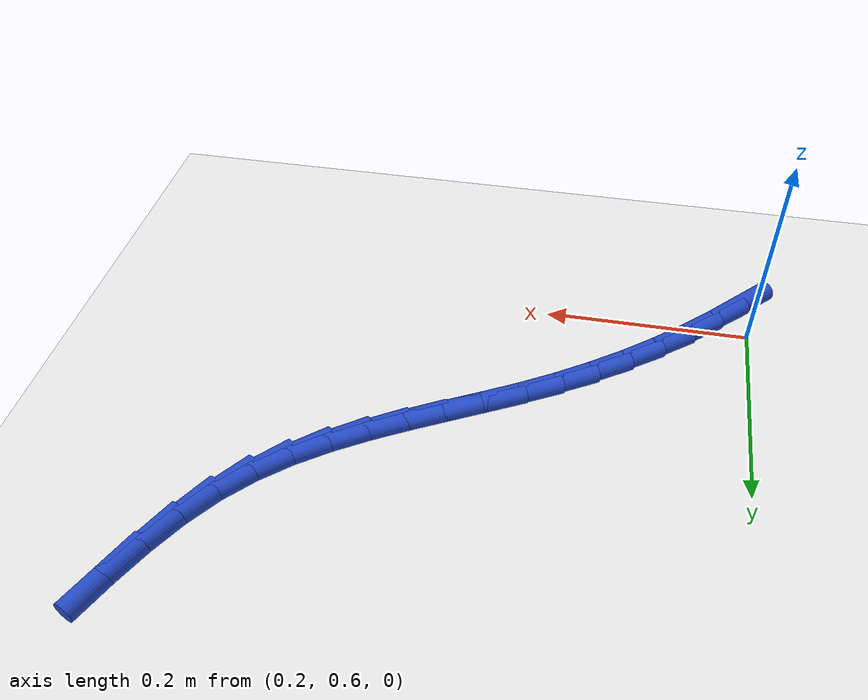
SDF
<sdf version="1.6">
 <world name="default">
  <model name="ground_plane">
   <static>1</static>
   <link name="link">
    <collision name="collision">
     <geometry><plane><normal>0 0 1</normal><size>100 100</size></plane></geometry>
     <surface><friction><ode><mu>100</mu><mu2>50</mu2></ode></friction></surface>
    </collision>
    <visual name="visual">
     <cast_shadows>0</cast_shadows>
     <geometry><plane><normal>0 0 1</normal><size>100 100</size></plane></geometry>
     <material>
      <script><uri>file://media/materials/scripts/gazebo.material</uri><name>Gazebo/WhiteGlow</name></script>
     </material>
    </visual>
   </link>
  </model>
  <model name="line">
   <link name="link_17">
    <pose>0.20880149543954943 0.5633568729928409 0.01 0 1.57 0.8031527217122393</pose>
    <collision name="collision">
     <geometry><cylinder><radius>0.01</radius><length>0.08</length></cylinder></geometry>
    </collision>
    <visual name="visual">
     <material>
      <script><name>Gazebo/Blue</name><uri>file://media/materials/scripts/gazebo.material</uri></script>
     </material>
     <geometry><cylinder><radius>0.01</radius><length>0.08</length></cylinder></geometry>
    </visual>
   </link>
   <link name="link_18">
    <pose>0.23437026255456422 0.5898500745025688 0.01 0 1.57 0.7588754183974462</pose>
    <collision name="collision">
     <geometry><cylinder><radius>0.01</radius><length>0.08</length></cylinder></geometry>
    </collision>
    <visual name="visual">
     <material>
      <script><name>Gazebo/Blue</name><uri>file://media/materials/scripts/gazebo.material</uri></script>
     </material>
     <geometry><cylinder><radius>0.01</radius><length>0.08</length></cylinder></geometry>
    </visual>
   </link>
   <link name="link_19">
    <pose>0.2611242343384911 0.6152212208039219 0.01 0 1.57 0.7146102943155618</pose>
    <collision name="collision">
     <geometry><cylinder><radius>0.01</radius><length>0.08</length></cylinder></geometry>
    </collision>
    <visual name="visual">
     <material>
      <script><name>Gazebo/Blue</name><uri>file://media/materials/scripts/gazebo.material</uri></script>
     </material>
     <geometry><cylinder><radius>0.01</radius><length>0.08</length></cylinder></geometry>
    </visual>
   </link>
   <link name="link_20">
    <pose>0.28900721836416365 0.6394118549434401 0.01 0 1.57 0.6702398961260468</pose>
    <collision name="collision">
     <geometry><cylinder><radius>0.01</radius><length>0.08</length></cylinder></geometry>
    </collision>
    <visual name="visual">
     <material>
      <script><name>Gazebo/Blue</name><uri>file://media/materials/scripts/gazebo.material</uri></script>
     </material>
     <geometry><cylinder><radius>0.01</radius><length>0.08</length></cylinder></geometry>
    </visual>
   </link>
   <link name="link_21">
    <pose>0.31796302220441547 0.6623635199676632 0.01 0 1.57 0.6256491008757675</pose>
    <collision name="collision">
     <geometry><cylinder><radius>0.01</radius><length>0.08</length></cylinder></geometry>
    </collision>
    <visual name="visual">
     <material>
      <script><name>Gazebo/Blue</name><uri>file://media/materials/scripts/gazebo.material</uri></script>
     </material>
     <geometry><cylinder><radius>0.01</radius><length>0.08</length></cylinder></geometry>
    </visual>
   </link>
   <link name="link_22">
    <pose>0.3479354534320803 0.6840177589231312 0.01 0 1.57 0.5807261300224197</pose>
    <collision name="collision">
     <geometry><cylinder><radius>0.01</radius><length>0.08</length></cylinder></geometry>
    </collision>
    <visual name="visual">
     <material>
      <script><name>Gazebo/Blue</name><uri>file://media/materials/scripts/gazebo.material</uri></script>
     </material>
     <geometry><cylinder><radius>0.01</radius><length>0.08</length></cylinder></geometry>
    </visual>
   </link>
   <link name="link_23">
    <pose>0.37886831961999157 0.7043161148563835 0.01 0 1.57 0.535577071561149</pose>
    <collision name="collision">
     <geometry><cylinder><radius>0.01</radius><length>0.08</length></cylinder></geometry>
    </collision>
    <visual name="visual">
     <material>
      <script><name>Gazebo/Blue</name><uri>file://media/materials/scripts/gazebo.material</uri></script>
     </material>
     <geometry><cylinder><radius>0.01</radius><length>0.08</length></cylinder></geometry>
    </visual>
   </link>
   <link name="link_24">
    <pose>0.410701189025113 0.7232068003860688 0.01 0 1.57 0.49868385476483523</pose>
    <collision name="collision">
     <geometry><cylinder><radius>0.01</radius><length>0.08</length></cylinder></geometry>
    </collision>
    <visual name="visual">
     <material>
      <script><name>Gazebo/Blue</name><uri>file://media/materials/scripts/gazebo.material</uri></script>
     </material>
     <geometry><cylinder><radius>0.01</radius><length>0.08</length></cylinder></geometry>
    </visual>
   </link>
   <link name="link_25">
    <pose>0.44320269669220885 0.7409069515655644 0.01 0 1.57 0.481225126800873</pose>
    <collision name="collision">
     <geometry><cylinder><radius>0.01</radius><length>0.08</length></cylinder></geometry>
    </collision>
    <visual name="visual">
     <material>
      <script><name>Gazebo/Blue</name><uri>file://media/materials/scripts/gazebo.material</uri></script>
     </material>
     <geometry><cylinder><radius>0.01</radius><length>0.08</length></cylinder></geometry>
    </visual>
   </link>
   <link name="link_26">
    <pose>0.4759158166371641 0.7579887293038019 0.01 0 1.57 0.4839888741750512</pose>
    <collision name="collision">
     <geometry><cylinder><radius>0.01</radius><length>0.08</length></cylinder></geometry>
    </collision>
    <visual name="visual">
     <material>
      <script><name>Gazebo/Blue</name><uri>file://media/materials/scripts/gazebo.material</uri></script>
     </material>
     <geometry><cylinder><radius>0.01</radius><length>0.08</length></cylinder></geometry>
    </visual>
   </link>
   <link name="link_27">
    <pose>0.5083680725927255 0.775048601917006 0.01 0 1.57 0.5074072052652896</pose>
    <collision name="collision">
     <geometry><cylinder><radius>0.01</radius><length>0.08</length></cylinder></geometry>
    </collision>
    <visual name="visual">
     <material>
      <script><name>Gazebo/Blue</name><uri>file://media/materials/scripts/gazebo.material</uri></script>
     </material>
     <geometry><cylinder><radius>0.01</radius><length>0.08</length></cylinder></geometry>
    </visual>
   </link>
   <link name="link_28">
    <pose>0.5400869882916401 0.7926830377214015 0.01 0 1.57 0.5523244619791184</pose>
    <collision name="collision">
     <geometry><cylinder><radius>0.01</radius><length>0.08</length></cylinder></geometry>
    </collision>
    <visual name="visual">
     <material>
      <script><name>Gazebo/Blue</name><uri>file://media/materials/scripts/gazebo.material</uri></script>
     </material>
     <geometry><cylinder><radius>0.01</radius><length>0.08</length></cylinder></geometry>
    </visual>
   </link>
   <link name="link_29">
    <pose>0.5706000874666554 0.8114885050332135 0.01 0 1.57 0.6197136887666675</pose>
    <collision name="collision">
     <geometry><cylinder><radius>0.01</radius><length>0.08</length></cylinder></geometry>
    </collision>
    <visual name="visual">
     <material>
      <script><name>Gazebo/Blue</name><uri>file://media/materials/scripts/gazebo.material</uri></script>
     </material>
     <geometry><cylinder><radius>0.01</radius><length>0.08</length></cylinder></geometry>
    </visual>
   </link>
   <link name="link_30">
    <pose>0.5994348938505183 0.8320614721686669 0.01 0 1.57 0.7100267309773654</pose>
    <collision name="collision">
     <geometry><cylinder><radius>0.01</radius><length>0.08</length></cylinder></geometry>
    </collision>
    <visual name="visual">
     <material>
      <script><name>Gazebo/Blue</name><uri>file://media/materials/scripts/gazebo.material</uri></script>
     </material>
     <geometry><cylinder><radius>0.01</radius><length>0.08</length></cylinder></geometry>
    </visual>
   </link>
   <link name="link_31">
    <pose>0.6261189311759756 0.8549984074439864 0.01 0 1.57 0.8221439703588708</pose>
    <collision name="collision">
     <geometry><cylinder><radius>0.01</radius><length>0.08</length></cylinder></geometry>
    </collision>
    <visual name="visual">
     <material>
      <script><name>Gazebo/Blue</name><uri>file://media/materials/scripts/gazebo.material</uri></script>
     </material>
     <geometry><cylinder><radius>0.01</radius><length>0.08</length></cylinder></geometry>
    </visual>
   </link>
   <link name="link_32">
    <pose>0.6501797231757748 0.8808957791753966 0.01 0 1.57 0.9450977270257772</pose>
    <collision name="collision">
     <geometry><cylinder><radius>0.01</radius><length>0.08</length></cylinder></geometry>
    </collision>
    <visual name="visual">
     <material>
      <script><name>Gazebo/Blue</name><uri>file://media/materials/scripts/gazebo.material</uri></script>
     </material>
     <geometry><cylinder><radius>0.01</radius><length>0.08</length></cylinder></geometry>
    </visual>
   </link>
   <link name="link_33">
    <pose>0.6713083735792571 0.9101376745909182 0.01 0 1.57 1.0437798711639306</pose>
    <collision name="collision">
     <geometry><cylinder><radius>0.01</radius><length>0.08</length></cylinder></geometry>
    </collision>
    <visual name="visual">
     <material>
      <script><name>Gazebo/Blue</name><uri>file://media/materials/scripts/gazebo.material</uri></script>
     </material>
     <geometry><cylinder><radius>0.01</radius><length>0.08</length></cylinder></geometry>
    </visual>
   </link>
   <link name="link_34">
    <pose>0.6899356297273433 0.9421478782019689 0.01 0 1.57 1.1118739134698177</pose>
    <collision name="collision">
     <geometry><cylinder><radius>0.01</radius><length>0.08</length></cylinder></geometry>
    </collision>
    <visual name="visual">
     <material>
      <script><name>Gazebo/Blue</name><uri>file://media/materials/scripts/gazebo.material</uri></script>
     </material>
     <geometry><cylinder><radius>0.01</radius><length>0.08</length></cylinder></geometry>
    </visual>
   </link>
   <link name="link_35">
    <pose>0.7067011909677737 0.9760788855145004 0.01 0 1.57 1.1529032584751293</pose>
    <collision name="collision">
     <geometry><cylinder><radius>0.01</radius><length>0.08</length></cylinder></geometry>
    </collision>
    <visual name="visual">
     <material>
      <script><name>Gazebo/Blue</name><uri>file://media/materials/scripts/gazebo.material</uri></script>
     </material>
     <geometry><cylinder><radius>0.01</radius><length>0.08</length></cylinder></geometry>
    </visual>
   </link>
  </model>
 </world>
</sdf>
